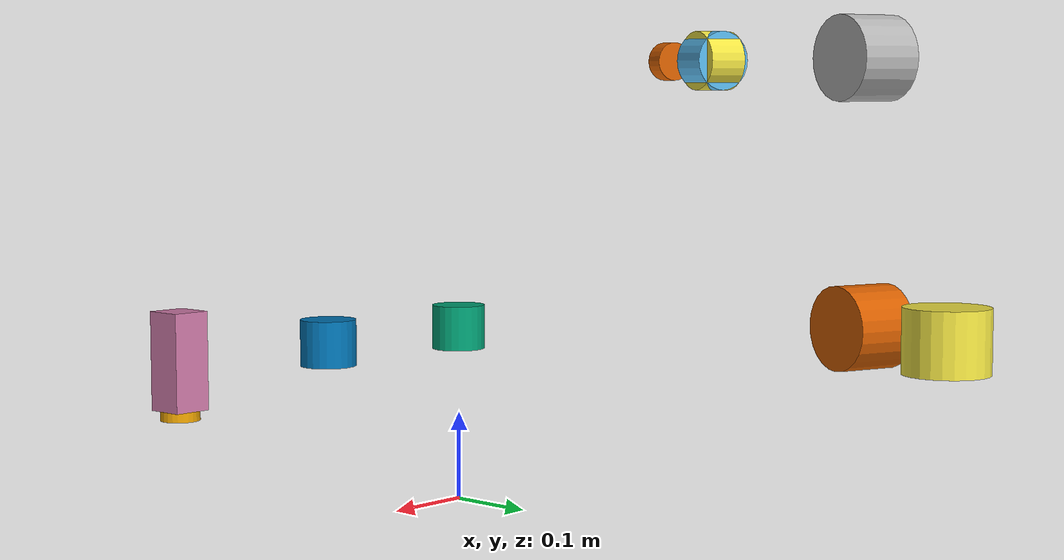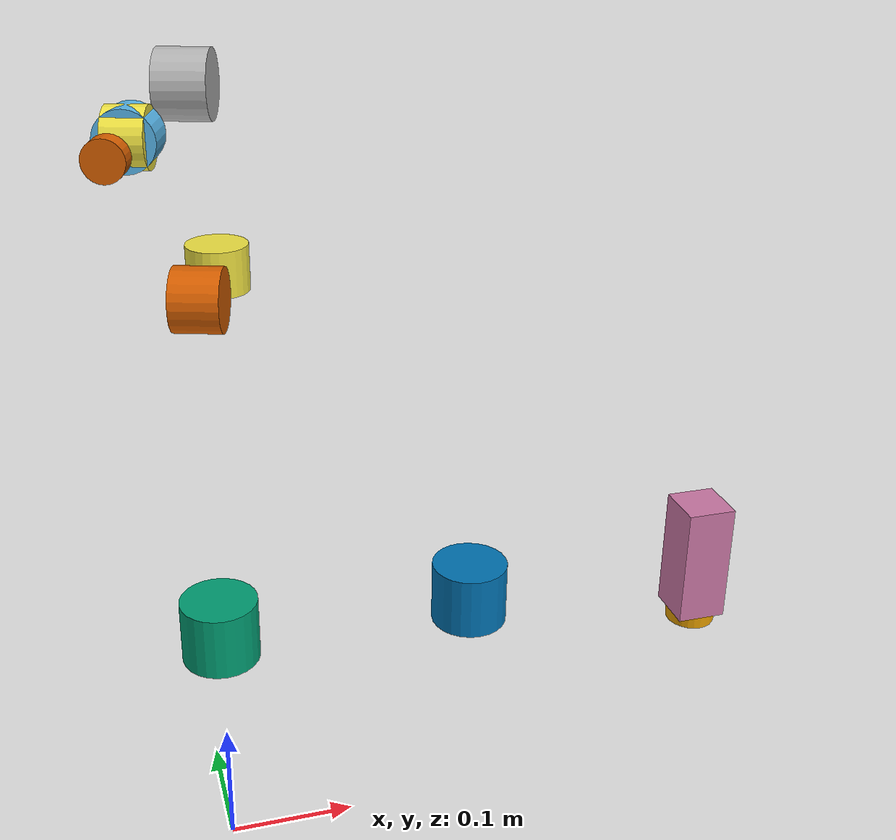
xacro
<?xml version="1.0"?>
<robot name="colab_robots" xmlns:xacro="http://ros.org/wiki/xacro">

  <!-- MARCO GLOBAL -->
  <link name="world"/>

  <!-- ==================== SCARA ==================== -->
  <!-- Offset: Origen en 0,0,0. Rotación -90 grados en Z para que +X sea abajo y +Y derecha -->
  <joint name="scara_world_joint" type="fixed">
    <parent link="world"/>
    <child link="scara_base"/>
    <origin xyz="0 0 0" rpy="0 0 -1.570796"/>
  </joint>
  <link name="scara_base"/>

  <!-- SCARA Fila 1: theta1, d1=0.200, a1=0.200, alpha1=0 -->
  <joint name="scara_q1" type="revolute">
    <parent link="scara_base"/>
    <child link="scara_dummy1"/>
    <origin xyz="0 0 0.200" rpy="0 0 1.57"/>
    <axis xyz="0 0 1"/>
    <limit lower="-3.14159" upper="3.14159" effort="10" velocity="1"/>
  </joint>
  <link name="scara_dummy1">
    <visual><geometry><cylinder length="0.05" radius="0.03"/></geometry></visual>
  </link>
  <joint name="scara_fixed1" type="fixed">
    <parent link="scara_dummy1"/>
    <child link="scara_link1"/>
    <origin xyz="0.200 0 0" rpy="0 0 0"/>
  </joint>
  <link name="scara_link1"/>

  <!-- SCARA Fila 2: theta2, d2=0, a2=0.200, alpha2=pi -->
  <joint name="scara_q2" type="revolute">
    <parent link="scara_link1"/>
    <child link="scara_dummy2"/>
    <origin xyz="0 0 0" rpy="0 0 0"/>
    <axis xyz="0 0 1"/>
    <limit lower="-3.14159" upper="3.14159" effort="10" velocity="1"/>
  </joint>
  <link name="scara_dummy2">
    <visual><geometry><cylinder length="0.05" radius="0.03"/></geometry></visual>
  </link>
  <joint name="scara_fixed2" type="fixed">
    <parent link="scara_dummy2"/>
    <child link="scara_link2"/>
    <origin xyz="0.200 0 0" rpy="3.14159 0 0"/>
  </joint>
  <link name="scara_link2"/>

  <!-- SCARA Fila 3 (Prismática): d3, theta3=0, a3=0, alpha3=0 -->
  <joint name="scara_d3" type="prismatic">
    <parent link="scara_link2"/>
    <child link="scara_dummy3"/>
    <origin xyz="0 0 0" rpy="0 0 0"/>
    <axis xyz="0 0 1"/>
    <limit lower="0.0" upper="0.200" effort="10" velocity="1"/>
  </joint>
  <link name="scara_dummy3">
    <visual><geometry><box size="0.04 0.04 0.1"/></geometry></visual>
  </link>
  <joint name="scara_fixed3" type="fixed">
    <parent link="scara_dummy3"/>
    <child link="scara_link3"/>
    <origin xyz="0 0 0" rpy="0 0 0"/>
  </joint>
  <link name="scara_link3"/>

  <!-- SCARA Fila 4: theta4, d4=0.050, a4=0, alpha4=0 -->
  <joint name="scara_q4" type="revolute">
    <parent link="scara_link3"/>
    <child link="scara_dummy4"/>
    <origin xyz="0 0 0.050" rpy="0 0 0"/>
    <axis xyz="0 0 1"/>
    <limit lower="-3.14159" upper="3.14159" effort="10" velocity="1"/>
  </joint>
  <link name="scara_dummy4">
    <visual><geometry><cylinder length="0.02" radius="0.02"/></geometry></visual>
  </link>
  <joint name="scara_fixed4" type="fixed">
    <parent link="scara_dummy4"/>
    <child link="scara_link4_EE"/> <!-- Efector Final SCARA -->
    <origin xyz="0 0 0" rpy="0 0 0"/>
  </joint>
  <link name="scara_link4_EE"/>

  <!-- ==================== ANTROPOMÓRFICO ==================== -->
  <!-- Offset: x=0.100, y=0.700. Rotación en Z de -1.89255 rad -->
  <joint name="antro_world_joint" type="fixed">
    <parent link="world"/>
    <child link="antro_base"/>
    <origin xyz="0.100 0.700 0" rpy="0 0 -1.89255"/>
  </joint>
  <link name="antro_base"/>

  <!-- Antro Fila 1: theta1, d1=0.250, a1=0.120, alpha1=pi/2 -->
  <joint name="antro_q1" type="revolute">
    <parent link="antro_base"/>
    <child link="antro_dummy1"/>
    <origin xyz="0 0 0.250" rpy="0 0 0"/>
    <axis xyz="0 0 1"/>
    <limit lower="-1.5708" upper="1.5708" effort="10" velocity="1"/>
  </joint>
  <link name="antro_dummy1">
    <visual><geometry><cylinder length="0.06" radius="0.04"/></geometry></visual>
  </link>
  <joint name="antro_fixed1" type="fixed">
    <parent link="antro_dummy1"/>
    <child link="antro_link1"/>
    <origin xyz="0.120 0 0" rpy="1.570796 0 0"/>
  </joint>
  <link name="antro_link1"/>

  <!-- Antro Fila 2: theta2 + pi/2, d2=0, a2=0.250, alpha2=0 -->
  <!-- Ojo aquí: Añadimos el pi/2 al 'yaw' del origin para que el slider q2 empiece en 0 matemático -->
  <joint name="antro_q2" type="revolute">
    <parent link="antro_link1"/>
    <child link="antro_dummy2"/>
    <origin xyz="0 0 0" rpy="0 0 1.570796"/>
    <axis xyz="0 0 1"/>
    <limit lower="-1.309" upper="1.309" effort="10" velocity="1"/>
  </joint>
  <link name="antro_dummy2">
    <visual><geometry><cylinder length="0.06" radius="0.04"/></geometry></visual>
  </link>
  <joint name="antro_fixed2" type="fixed">
    <parent link="antro_dummy2"/>
    <child link="antro_link2"/>
    <origin xyz="0.250 0 0" rpy="0 0 0"/>
  </joint>
  <link name="antro_link2"/>

  <!-- Antro Fila 3: theta3, d3=0, a3=0, alpha3=pi/2 -->
  <joint name="antro_q3" type="revolute">
    <parent link="antro_link2"/>
    <child link="antro_dummy3"/>
    <origin xyz="0 0 0" rpy="0 0 0"/>
    <axis xyz="0 0 1"/>
    <limit lower="-1.309" upper="1.309" effort="10" velocity="1"/>
  </joint>
  <link name="antro_dummy3">
    <visual><geometry><cylinder length="0.06" radius="0.04"/></geometry></visual>
  </link>
  <joint name="antro_fixed3" type="fixed">
    <parent link="antro_dummy3"/>
    <child link="antro_link3"/>
    <origin xyz="0 0 0" rpy="1.570796 0 0"/>
  </joint>
  <link name="antro_link3"/>

  <!-- Antro Fila 4: theta4, d4=0.250, a4=0, alpha4=-pi/2 -->
  <joint name="antro_q4" type="revolute">
    <parent link="antro_link3"/>
    <child link="antro_dummy4"/>
    <origin xyz="0 0 0.250" rpy="0 0 0"/>
    <axis xyz="0 0 1"/>
    <limit lower="-2.356" upper="2.356" effort="10" velocity="1"/>
  </joint>
  <link name="antro_dummy4">
    <visual><geometry><cylinder length="0.04" radius="0.03"/></geometry></visual>
  </link>
  <joint name="antro_fixed4" type="fixed">
    <parent link="antro_dummy4"/>
    <child link="antro_link4"/>
    <origin xyz="0 0 0" rpy="-1.570796 0 0"/>
  </joint>
  <link name="antro_link4"/>

  <!-- Antro Fila 5: theta5, d5=0, a5=0, alpha5=pi/2 -->
  <joint name="antro_q5" type="revolute">
    <parent link="antro_link4"/>
    <child link="antro_dummy5"/>
    <origin xyz="0 0 0" rpy="0 0 0"/>
    <axis xyz="0 0 1"/>
    <limit lower="-2.356" upper="2.356" effort="10" velocity="1"/>
  </joint>
  <link name="antro_dummy5">
    <visual><geometry><cylinder length="0.04" radius="0.03"/></geometry></visual>
  </link>
  <joint name="antro_fixed5" type="fixed">
    <parent link="antro_dummy5"/>
    <child link="antro_link5"/>
    <origin xyz="0 0 0" rpy="1.570796 0 0"/>
  </joint>
  <link name="antro_link5"/>

  <!-- Antro Fila 6: theta6, d6=0.080, a6=0, alpha6=0 -->
  <joint name="antro_q6" type="revolute">
    <parent link="antro_link5"/>
    <child link="antro_dummy6"/>
    <origin xyz="0 0 0.080" rpy="0 0 0"/>
    <axis xyz="0 0 1"/>
    <limit lower="-2.356" upper="2.356" effort="10" velocity="1"/>
  </joint>
  <link name="antro_dummy6">
    <visual><geometry><cylinder length="0.02" radius="0.02"/></geometry></visual>
  </link>
  <joint name="antro_fixed6" type="fixed">
    <parent link="antro_dummy6"/>
    <child link="antro_link6_EE"/> <!-- Efector Final Antropomórfico -->
    <origin xyz="0 0 0" rpy="0 0 0"/>
  </joint>
  <link name="antro_link6_EE"/>

</robot>
